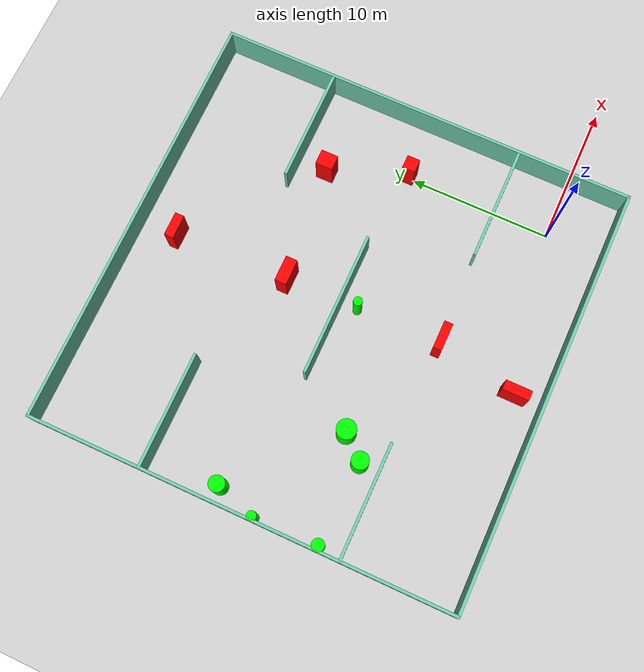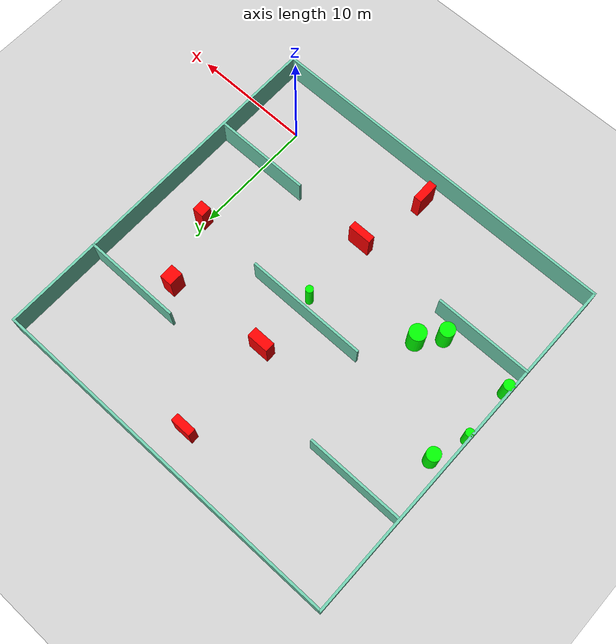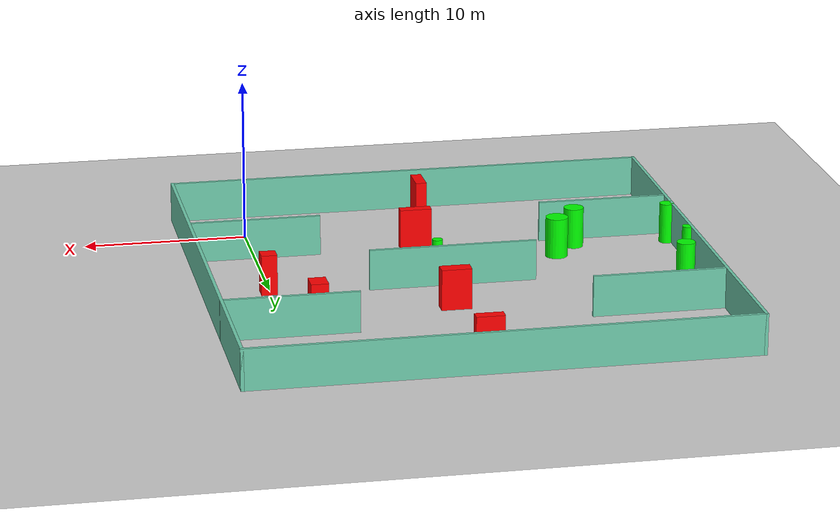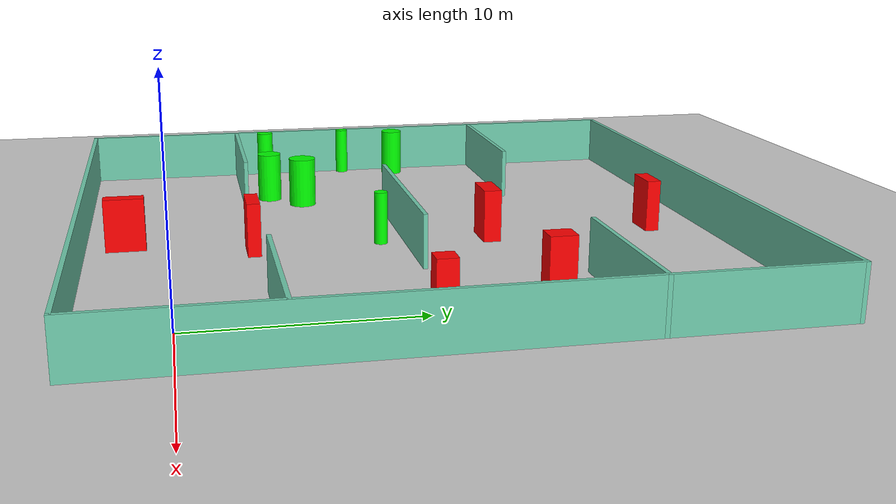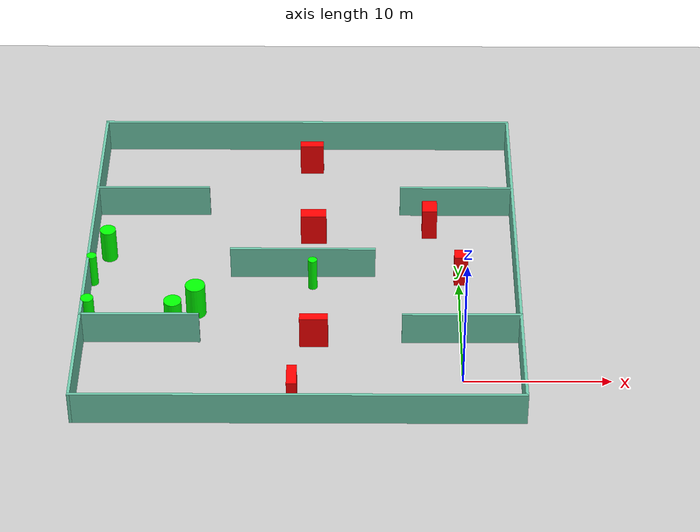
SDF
<sdf version="1.7">
 <world name="default">
  <light name="sun" type="directional">
   <pose>0 0 10 0 -0 0</pose>
   <diffuse>0.8 0.8 0.8 1</diffuse>
   <specular>0.2 0.2 0.2 1</specular>
   <attenuation>
    <range>1000</range>
    <constant>0.9</constant>
    <linear>0.01</linear>
    <quadratic>0.001</quadratic>
   </attenuation>
   <direction>-0.5 0.1 -0.9</direction>
   <spot><inner_angle>0</inner_angle><outer_angle>0</outer_angle><falloff>0</falloff></spot>
  </light>
  <model name="ground_plane">
   <static>1</static>
   <link name="link">
    <collision name="collision">
     <geometry><plane><normal>0 0 1</normal><size>100 100</size></plane></geometry>
     <surface>
      <contact><collide_bitmask>65535</collide_bitmask></contact>
      <friction><ode><mu>100</mu><mu2>50</mu2></ode></friction>
     </surface>
    </collision>
    <visual name="visual">
     <cast_shadows>0</cast_shadows>
     <geometry><plane><normal>0 0 1</normal><size>100 100</size></plane></geometry>
     <material>
      <script><uri>file://media/materials/scripts/gazebo.material</uri><name>Gazebo/Grey</name></script>
     </material>
    </visual>
   </link>
  </model>
  <gravity>0 0 -9.8</gravity>
  <magnetic_field>6e-06 2.3e-05 -4.2e-05</magnetic_field>
  <atmosphere type="adiabatic"/>
  <physics type="ode">
   <max_step_size>0.001</max_step_size>
   <real_time_factor>1</real_time_factor>
   <real_time_update_rate>1000</real_time_update_rate>
  </physics>
  <scene><ambient>0.4 0.4 0.4 1</ambient><background>0.7 0.7 0.7 1</background><shadows>1</shadows></scene>
  <spherical_coordinates>
   <surface_model>EARTH_WGS84</surface_model>
   <latitude_deg>0</latitude_deg>
   <longitude_deg>0</longitude_deg>
   <elevation>0</elevation>
   <heading_deg>0</heading_deg>
  </spherical_coordinates>
  <model name="my_base_walls">
   <link name="Wall_10">
    <collision name="Wall_10_Collision">
     <geometry><box><size>8.2 0.2 2.5</size></box></geometry>
     <pose>0 0 1.25 0 -0 0</pose>
    </collision>
    <visual name="Wall_10_Visual">
     <pose>0 0 1.25 0 -0 0</pose>
     <geometry><box><size>8.2 0.2 2.5</size></box></geometry>
     <material>
      <script><uri>file://media/materials/scripts/gazebo.material</uri><name>Gazebo/Grey</name></script>
      <ambient>0.435294 0.796078 0.67451 1</ambient>
     </material>
     <meta><layer>0</layer></meta>
    </visual>
    <pose>-11 -7 0 0 -0 0</pose>
   </link>
   <link name="Wall_12">
    <collision name="Wall_12_Collision">
     <geometry><box><size>8.2 0.2 2.5</size></box></geometry>
     <pose>0 0 1.25 0 -0 0</pose>
    </collision>
    <visual name="Wall_12_Visual">
     <pose>0 0 1.25 0 -0 0</pose>
     <geometry><box><size>8.2 0.2 2.5</size></box></geometry>
     <material>
      <script><uri>file://media/materials/scripts/gazebo.material</uri><name>Gazebo/Grey</name></script>
      <ambient>0.435294 0.796078 0.67451 1</ambient>
     </material>
     <meta><layer>0</layer></meta>
    </visual>
    <pose>-11 7 0 0 -0 0</pose>
   </link>
   <link name="Wall_14">
    <collision name="Wall_14_Collision">
     <geometry><box><size>8.2 0.2 2.5</size></box></geometry>
     <pose>0 0 1.25 0 -0 0</pose>
    </collision>
    <visual name="Wall_14_Visual">
     <pose>0 0 1.25 0 -0 0</pose>
     <geometry><box><size>8.2 0.2 2.5</size></box></geometry>
     <material>
      <script><uri>file://media/materials/scripts/gazebo.material</uri><name>Gazebo/Grey</name></script>
      <ambient>0.435294 0.796078 0.67451 1</ambient>
     </material>
     <meta><layer>0</layer></meta>
    </visual>
    <pose>11 7 0 0 -0 3.14159</pose>
   </link>
   <link name="Wall_16">
    <collision name="Wall_16_Collision">
     <geometry><box><size>10.2 0.2 2.5</size></box></geometry>
     <pose>0 0 1.25 0 -0 0</pose>
    </collision>
    <visual name="Wall_16_Visual">
     <pose>0 0 1.25 0 -0 0</pose>
     <geometry><box><size>10.2 0.2 2.5</size></box></geometry>
     <material>
      <script><uri>file://media/materials/scripts/gazebo.material</uri><name>Gazebo/Grey</name></script>
      <ambient>0.435294 0.796078 0.67451 1</ambient>
     </material>
     <meta><layer>0</layer></meta>
    </visual>
    <pose>0 0 0 0 -0 3.14159</pose>
   </link>
   <link name="Wall_2">
    <collision name="Wall_2_Collision">
     <geometry><box><size>30.2 0.2 2.5</size></box></geometry>
     <pose>0 0 1.25 0 -0 0</pose>
    </collision>
    <visual name="Wall_2_Visual">
     <pose>0 0 1.25 0 -0 0</pose>
     <geometry><box><size>30.2 0.2 2.5</size></box></geometry>
     <material>
      <script><uri>file://media/materials/scripts/gazebo.material</uri><name>Gazebo/Grey</name></script>
      <ambient>0.435294 0.796078 0.67451 1</ambient>
     </material>
     <meta><layer>0</layer></meta>
    </visual>
    <pose>0 -15 0 0 -0 3.14159</pose>
   </link>
   <link name="Wall_3">
    <collision name="Wall_3_Collision">
     <geometry><box><size>30.2 0.2 2.5</size></box></geometry>
     <pose>0 0 1.25 0 -0 0</pose>
    </collision>
    <visual name="Wall_3_Visual">
     <pose>0 0 1.25 0 -0 0</pose>
     <geometry><box><size>30.2 0.2 2.5</size></box></geometry>
     <material>
      <script><uri>file://media/materials/scripts/gazebo.material</uri><name>Gazebo/Grey</name></script>
      <ambient>0.435294 0.796078 0.67451 1</ambient>
     </material>
     <meta><layer>0</layer></meta>
    </visual>
    <pose>-15 0 0 0 -0 1.5708</pose>
   </link>
   <link name="Wall_4">
    <collision name="Wall_4_Collision">
     <geometry><box><size>30.2 0.2 2.5</size></box></geometry>
     <pose>0 0 1.25 0 -0 0</pose>
    </collision>
    <visual name="Wall_4_Visual">
     <pose>0 0 1.25 0 -0 0</pose>
     <geometry><box><size>30.2 0.2 2.5</size></box></geometry>
     <material>
      <script><uri>file://media/materials/scripts/gazebo.material</uri><name>Gazebo/Grey</name></script>
      <ambient>0.435294 0.796078 0.67451 1</ambient>
     </material>
     <meta><layer>0</layer></meta>
    </visual>
    <pose>0 15 0 0 -0 0</pose>
   </link>
   <link name="Wall_6">
    <collision name="Wall_6_Collision">
     <geometry><box><size>30.2 0.2 2.5</size></box></geometry>
     <pose>0 0 1.25 0 -0 0</pose>
    </collision>
    <visual name="Wall_6_Visual">
     <pose>0 0 1.25 0 -0 0</pose>
     <geometry><box><size>30.2 0.2 2.5</size></box></geometry>
     <material>
      <script><uri>file://media/materials/scripts/gazebo.material</uri><name>Gazebo/Grey</name></script>
      <ambient>0.435294 0.796078 0.67451 1</ambient>
     </material>
     <meta><layer>0</layer></meta>
    </visual>
    <pose>15 0 0 0 -0 1.5708</pose>
   </link>
   <link name="Wall_8">
    <collision name="Wall_8_Collision">
     <geometry><box><size>8.2 0.2 2.5</size></box></geometry>
     <pose>0 0 1.25 0 -0 0</pose>
    </collision>
    <visual name="Wall_8_Visual">
     <pose>0 0 1.25 0 -0 0</pose>
     <geometry><box><size>8.2 0.2 2.5</size></box></geometry>
     <material>
      <script><uri>file://media/materials/scripts/gazebo.material</uri><name>Gazebo/Grey</name></script>
      <ambient>0.435294 0.796078 0.67451 1</ambient>
     </material>
     <meta><layer>0</layer></meta>
    </visual>
    <pose>11 -7 0 0 -0 3.14159</pose>
   </link>
   <static>1</static>
   <pose>-11 11 0 0 -0 0</pose>
  </model>
  <model name="cylinder1">
   <static>1</static>
   <link name="link">
    <inertial>
     <mass>1</mass>
     <inertia><ixx>0.5</ixx><ixy>0</ixy><ixz>0</ixz><iyy>0.5</iyy><iyz>0</iyz><izz>1</izz></inertia>
    </inertial>
    <collision name="collision">
     <geometry><cylinder><radius>0.6118980312728886</radius><length>2.5</length></cylinder></geometry>
    </collision>
    <visual name="visual">
     <geometry><cylinder><radius>0.6118980312728886</radius><length>2.5</length></cylinder></geometry>
     <material>
      <ambient>0 1 0 1</ambient>
      <diffuse>0 1 0 1</diffuse>
      <specular>0.1 0.1 0.1 1</specular>
      <emissive>0 0 0 0</emissive>
     </material>
    </visual>
   </link>
   <pose>-19.785257058042866 5.370933332927082 1.25 0 0 0</pose>
  </model>
  <model name="cylinder2">
   <static>1</static>
   <link name="link">
    <inertial>
     <mass>1</mass>
     <inertia><ixx>0.5</ixx><ixy>0</ixy><ixz>0</ixz><iyy>0.5</iyy><iyz>0</iyz><izz>1</izz></inertia>
    </inertial>
    <collision name="collision">
     <geometry><cylinder><radius>0.6913129109940261</radius><length>2.5</length></cylinder></geometry>
    </collision>
    <visual name="visual">
     <geometry><cylinder><radius>0.6913129109940261</radius><length>2.5</length></cylinder></geometry>
     <material>
      <ambient>0 1 0 1</ambient>
      <diffuse>0 1 0 1</diffuse>
      <specular>0.1 0.1 0.1 1</specular>
      <emissive>0 0 0 0</emissive>
     </material>
    </visual>
   </link>
   <pose>-18.333183147642114 6.988244111845821 1.25 0 0 0</pose>
  </model>
  <model name="cylinder3">
   <static>1</static>
   <link name="link">
    <inertial>
     <mass>1</mass>
     <inertia><ixx>0.5</ixx><ixy>0</ixy><ixz>0</ixz><iyy>0.5</iyy><iyz>0</iyz><izz>1</izz></inertia>
    </inertial>
    <collision name="collision">
     <geometry><cylinder><radius>0.3155442920824476</radius><length>2.5</length></cylinder></geometry>
    </collision>
    <visual name="visual">
     <geometry><cylinder><radius>0.3155442920824476</radius><length>2.5</length></cylinder></geometry>
     <material>
      <ambient>0 1 0 1</ambient>
      <diffuse>0 1 0 1</diffuse>
      <specular>0.1 0.1 0.1 1</specular>
      <emissive>0 0 0 0</emissive>
     </material>
    </visual>
   </link>
   <pose>-10.291253762572747 9.791307627158147 1.25 0 0 0</pose>
  </model>
  <model name="cylinder4">
   <static>1</static>
   <link name="link">
    <inertial>
     <mass>1</mass>
     <inertia><ixx>0.5</ixx><ixy>0</ixy><ixz>0</ixz><iyy>0.5</iyy><iyz>0</iyz><izz>1</izz></inertia>
    </inertial>
    <collision name="collision">
     <geometry><cylinder><radius>0.3415213100837704</radius><length>2.5</length></cylinder></geometry>
    </collision>
    <visual name="visual">
     <geometry><cylinder><radius>0.3415213100837704</radius><length>2.5</length></cylinder></geometry>
     <material>
      <ambient>0 1 0 1</ambient>
      <diffuse>0 1 0 1</diffuse>
      <specular>0.1 0.1 0.1 1</specular>
      <emissive>0 0 0 0</emissive>
     </material>
    </visual>
   </link>
   <pose>-25.75959618421116 10.182997044072199 1.25 0 0 0</pose>
  </model>
  <model name="cylinder5">
   <static>1</static>
   <link name="link">
    <inertial>
     <mass>1</mass>
     <inertia><ixx>0.5</ixx><ixy>0</ixy><ixz>0</ixz><iyy>0.5</iyy><iyz>0</iyz><izz>1</izz></inertia>
    </inertial>
    <collision name="collision">
     <geometry><cylinder><radius>0.4423454336447105</radius><length>2.5</length></cylinder></geometry>
    </collision>
    <visual name="visual">
     <geometry><cylinder><radius>0.4423454336447105</radius><length>2.5</length></cylinder></geometry>
     <material>
      <ambient>0 1 0 1</ambient>
      <diffuse>0 1 0 1</diffuse>
      <specular>0.1 0.1 0.1 1</specular>
      <emissive>0 0 0 0</emissive>
     </material>
    </visual>
   </link>
   <pose>-25.66360878473593 5.633070437321017 1.25 0 0 0</pose>
  </model>
  <model name="cylinder6">
   <static>1</static>
   <link name="link">
    <inertial>
     <mass>1</mass>
     <inertia><ixx>0.5</ixx><ixy>0</ixy><ixz>0</ixz><iyy>0.5</iyy><iyz>0</iyz><izz>1</izz></inertia>
    </inertial>
    <collision name="collision">
     <geometry><cylinder><radius>0.5630049605074716</radius><length>2.5</length></cylinder></geometry>
    </collision>
    <visual name="visual">
     <geometry><cylinder><radius>0.5630049605074716</radius><length>2.5</length></cylinder></geometry>
     <material>
      <ambient>0 1 0 1</ambient>
      <diffuse>0 1 0 1</diffuse>
      <specular>0.1 0.1 0.1 1</specular>
      <emissive>0 0 0 0</emissive>
     </material>
    </visual>
   </link>
   <pose>-24.864129958449485 13.039626398299372 1.25 0 0 0</pose>
  </model>
  <model name="box1">
   <static>1</static>
   <link name="link">
    <inertial>
     <mass>1</mass>
     <inertia><ixx>0.083</ixx><ixy>0</ixy><ixz>0</ixz><iyy>0.083</iyy><iyz>0</iyz><izz>0.083</izz></inertia>
    </inertial>
    <collision name="collision">
     <geometry><box><size>0.9587405110692826 0.9223742187939205 2.5</size></box></geometry>
    </collision>
    <visual name="visual">
     <geometry><box><size>0.9587405110692826 0.9223742187939205 2.5</size></box></geometry>
     <material>
      <ambient>1 0 0 1</ambient>
      <diffuse>1 0 0 1</diffuse>
      <specular>0.1 0.1 0.1 1</specular>
      <emissive>0 0 0 0</emissive>
     </material>
    </visual>
    <sensor name="my_contact" type="contact">
     <contact><collision>box_collision</collision><topic>__default_topic__</topic></contact>
    </sensor>
   </link>
   <pose>0.12055730978203982 10.451565630437528 1.25 0 0 0</pose>
  </model>
  <model name="box2">
   <static>1</static>
   <link name="link">
    <inertial>
     <mass>1</mass>
     <inertia><ixx>0.083</ixx><ixy>0</ixy><ixz>0</ixz><iyy>0.083</iyy><iyz>0</iyz><izz>0.083</izz></inertia>
    </inertial>
    <collision name="collision">
     <geometry><box><size>1.8234067072425169 0.8352261126522134 2.5</size></box></geometry>
    </collision>
    <visual name="visual">
     <geometry><box><size>1.8234067072425169 0.8352261126522134 2.5</size></box></geometry>
     <material>
      <ambient>1 0 0 1</ambient>
      <diffuse>1 0 0 1</diffuse>
      <specular>0.1 0.1 0.1 1</specular>
      <emissive>0 0 0 0</emissive>
     </material>
    </visual>
    <sensor name="my_contact" type="contact">
     <contact><collision>box_collision</collision><topic>__default_topic__</topic></contact>
    </sensor>
   </link>
   <pose>-10.31687740522409 15.022188391733568 1.25 0 0 0</pose>
  </model>
  <model name="box3">
   <static>1</static>
   <link name="link">
    <inertial>
     <mass>1</mass>
     <inertia><ixx>0.083</ixx><ixy>0</ixy><ixz>0</ixz><iyy>0.083</iyy><iyz>0</iyz><izz>0.083</izz></inertia>
    </inertial>
    <collision name="collision">
     <geometry><box><size>1.6984732043301483 0.6568961496265329 2.5</size></box></geometry>
    </collision>
    <visual name="visual">
     <geometry><box><size>1.6984732043301483 0.6568961496265329 2.5</size></box></geometry>
     <material>
      <ambient>1 0 0 1</ambient>
      <diffuse>1 0 0 1</diffuse>
      <specular>0.1 0.1 0.1 1</specular>
      <emissive>0 0 0 0</emissive>
     </material>
    </visual>
    <sensor name="my_contact" type="contact">
     <contact><collision>box_collision</collision><topic>__default_topic__</topic></contact>
    </sensor>
   </link>
   <pose>-10.575650783791556 23.24118275739479 1.25 0 0 0</pose>
  </model>
  <model name="box4">
   <static>1</static>
   <link name="link">
    <inertial>
     <mass>1</mass>
     <inertia><ixx>0.083</ixx><ixy>0</ixy><ixz>0</ixz><iyy>0.083</iyy><iyz>0</iyz><izz>0.083</izz></inertia>
    </inertial>
    <collision name="collision">
     <geometry><box><size>1.0562462318456172 1.2215750410084583 2.5</size></box></geometry>
    </collision>
    <visual name="visual">
     <geometry><box><size>1.0562462318456172 1.2215750410084583 2.5</size></box></geometry>
     <material>
      <ambient>1 0 0 1</ambient>
      <diffuse>1 0 0 1</diffuse>
      <specular>0.1 0.1 0.1 1</specular>
      <emissive>0 0 0 0</emissive>
     </material>
    </visual>
    <sensor name="my_contact" type="contact">
     <contact><collision>box_collision</collision><topic>__default_topic__</topic></contact>
    </sensor>
   </link>
   <pose>-1.9965615946867175 15.836622599550942 1.25 0 0 0</pose>
  </model>
  <model name="box5">
   <static>1</static>
   <link name="link">
    <inertial>
     <mass>1</mass>
     <inertia><ixx>0.083</ixx><ixy>0</ixy><ixz>0</ixz><iyy>0.083</iyy><iyz>0</iyz><izz>0.083</izz></inertia>
    </inertial>
    <collision name="collision">
     <geometry><box><size>1.9500809974117956 0.6220380836585457 2.5</size></box></geometry>
    </collision>
    <visual name="visual">
     <geometry><box><size>1.9500809974117956 0.6220380836585457 2.5</size></box></geometry>
     <material>
      <ambient>1 0 0 1</ambient>
      <diffuse>1 0 0 1</diffuse>
      <specular>0.1 0.1 0.1 1</specular>
      <emissive>0 0 0 0</emissive>
     </material>
    </visual>
    <sensor name="my_contact" type="contact">
     <contact><collision>box_collision</collision><topic>__default_topic__</topic></contact>
    </sensor>
   </link>
   <pose>-10.110020806422584 3.747375738797259 1.25 0 0 0</pose>
  </model>
  <model name="box6">
   <static>1</static>
   <link name="link">
    <inertial>
     <mass>1</mass>
     <inertia><ixx>0.083</ixx><ixy>0</ixy><ixz>0</ixz><iyy>0.083</iyy><iyz>0</iyz><izz>0.083</izz></inertia>
    </inertial>
    <collision name="collision">
     <geometry><box><size>0.6761121896122644 1.854422151825934 2.5</size></box></geometry>
    </collision>
    <visual name="visual">
     <geometry><box><size>0.6761121896122644 1.854422151825934 2.5</size></box></geometry>
     <material>
      <ambient>1 0 0 1</ambient>
      <diffuse>1 0 0 1</diffuse>
      <specular>0.1 0.1 0.1 1</specular>
      <emissive>0 0 0 0</emissive>
     </material>
    </visual>
    <sensor name="my_contact" type="contact">
     <contact><collision>box_collision</collision><topic>__default_topic__</topic></contact>
    </sensor>
   </link>
   <pose>-11.459837535322073 -2.046758120670479 1.25 0 0 0</pose>
  </model>
 </world>
</sdf>
